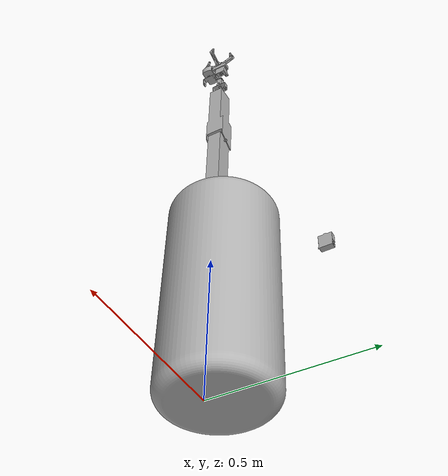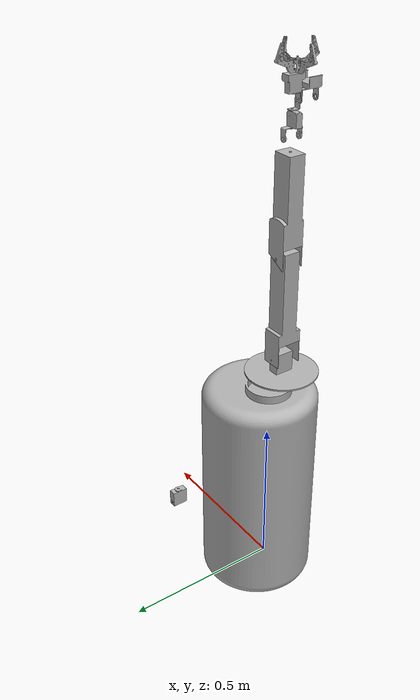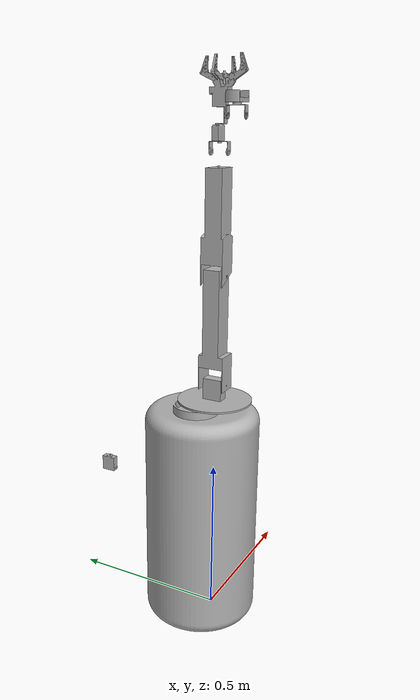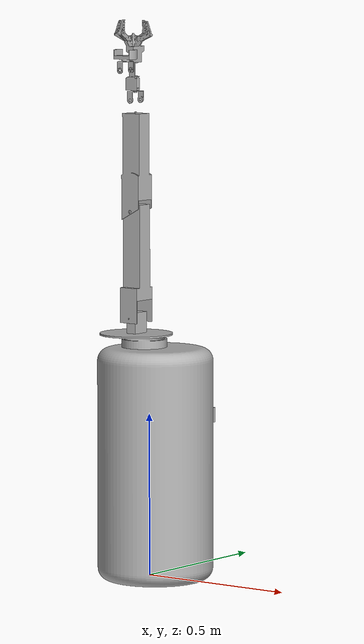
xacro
<?xml version="1.0"?>
<robot xmlns:xacro="http://www.ros.org/wiki/xacro" name="roboticarm">
    <xacro:arg name="initial_positions_file" default="initial_positions.yaml" />

    <!-- Import roboticarm urdf file -->
    <xacro:include filename="$(find roboticarm_description)/urdf/roboticarm.xacro" />

    <!-- Import control_xacro -->
    <xacro:include filename="roboticarm.ros2_control.xacro" />

    <xacro:roboticarm_ros2_control name="FakeSystem" initial_positions_file="$(arg initial_positions_file)"/>

</robot>

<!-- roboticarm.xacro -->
<robot name="roboticarm" xmlns:xacro="http://www.ros.org/wiki/xacro">

<xacro:include filename="$(find roboticarm_description)/urdf/materials.xacro" />
<xacro:include filename="$(find roboticarm_description)/urdf/roboticarm.trans" />
<xacro:include filename="$(find roboticarm_description)/urdf/roboticarm.gazebo" />

<link name="base_link">
  <inertial>
    <origin xyz="-0.007118748865126541 0.03854857506884498 0.3409955293067082" rpy="0 0 0"/>
    <mass value="555.7346839951744"/>
    <inertia ixx="27.91875" iyy="27.919694" izz="8.711451" ixy="-0.0" iyz="0.0" ixz="0.008321"/>
  </inertial>
  <visual>
    <origin xyz="0 0 0" rpy="0 0 0"/>
    <geometry>
      <mesh filename="file://$(find roboticarm_description)/meshes/base_link.stl" scale="0.001 0.001 0.001"/>
    </geometry>
    <material name="silver"/>
  </visual>
  <collision>
    <origin xyz="0 0 0" rpy="0 0 0"/>
    <geometry>
      <mesh filename="file://$(find roboticarm_description)/meshes/base_link.stl" scale="0.001 0.001 0.001"/>
    </geometry>
  </collision>
</link>

<link name="waist_1">
  <inertial>
    <origin xyz="0.0009107621972253219 -4.249311544579637e-07 0.015904214280618723" rpy="0 0 0"/>
    <mass value="2.53765521355259"/>
    <inertia ixx="0.006015" iyy="0.006217" izz="0.010077" ixy="-0.0" iyz="-0.0" ixz="-5e-05"/>
  </inertial>
  <visual>
    <origin xyz="0.049279 -0.038549 -0.72545" rpy="0 0 0"/>
    <geometry>
      <mesh filename="file://$(find roboticarm_description)/meshes/waist_1.stl" scale="0.001 0.001 0.001"/>
    </geometry>
    <material name="silver"/>
  </visual>
  <collision>
    <origin xyz="0.049279 -0.038549 -0.72545" rpy="0 0 0"/>
    <geometry>
      <mesh filename="file://$(find roboticarm_description)/meshes/waist_1.stl" scale="0.001 0.001 0.001"/>
    </geometry>
  </collision>
</link>

<link name="shoulder_1">
  <inertial>
    <origin xyz="0.0382973877790897 0.19064302764500768 -3.051579688939654e-08" rpy="0 0 0"/>
    <mass value="8.062761032384056"/>
    <inertia ixx="0.067471" iyy="0.005059" izz="0.067114" ixy="-0.0003" iyz="0.0" ixz="0.0"/>
  </inertial>
  <visual>
    <origin xyz="0.085169 -0.038549 -0.777368" rpy="0 0 0"/>
    <geometry>
      <mesh filename="file://$(find roboticarm_description)/meshes/shoulder_1.stl" scale="0.001 0.001 0.001"/>
    </geometry>
    <material name="silver"/>
  </visual>
  <collision>
    <origin xyz="0.085169 -0.038549 -0.777368" rpy="0 0 0"/>
    <geometry>
      <mesh filename="file://$(find roboticarm_description)/meshes/shoulder_1.stl" scale="0.001 0.001 0.001"/>
    </geometry>
  </collision>
</link>

<link name="elbow_1">
  <inertial>
    <origin xyz="0.02920247067105579 -7.21401386509779e-05 -0.15559823879592616" rpy="0 0 0"/>
    <mass value="7.521482396242957"/>
    <inertia ixx="0.04967" iyy="0.04938" izz="0.004753" ixy="1e-06" iyz="8.9e-05" ixz="-0.000784"/>
  </inertial>
  <visual>
    <origin xyz="0.074501 -0.365675 -0.777368" rpy="0 0 0"/>
    <geometry>
      <mesh filename="file://$(find roboticarm_description)/meshes/elbow_1.stl" scale="0.001 0.001 0.001"/>
    </geometry>
    <material name="silver"/>
  </visual>
  <collision>
    <origin xyz="0.074501 -0.365675 -0.777368" rpy="0 0 0"/>
    <geometry>
      <mesh filename="file://$(find roboticarm_description)/meshes/elbow_1.stl" scale="0.001 0.001 0.001"/>
    </geometry>
  </collision>
</link>

<link name="w_a_1">
  <inertial>
    <origin xyz="1.1946506871252094e-07 -0.00013443433148491168 -0.023017854619370004" rpy="0 0 0"/>
    <mass value="0.3295527892858855"/>
    <inertia ixx="0.000115" iyy="7.4e-05" izz="6.3e-05" ixy="-0.0" iyz="-1e-06" ixz="0.0"/>
  </inertial>
  <visual>
    <origin xyz="0.046561 -0.365167 -0.474473" rpy="0 0 0"/>
    <geometry>
      <mesh filename="file://$(find roboticarm_description)/meshes/w_a_1.stl" scale="0.001 0.001 0.001"/>
    </geometry>
    <material name="silver"/>
  </visual>
  <collision>
    <origin xyz="0.046561 -0.365167 -0.474473" rpy="0 0 0"/>
    <geometry>
      <mesh filename="file://$(find roboticarm_description)/meshes/w_a_1.stl" scale="0.001 0.001 0.001"/>
    </geometry>
  </collision>
</link>

<link name="w_b_1">
  <inertial>
    <origin xyz="-0.01133550447434497 -0.023736124931154012 1.6948420966667044e-07" rpy="0 0 0"/>
    <mass value="0.034118286687107154"/>
    <inertia ixx="2e-05" iyy="6e-06" izz="2.4e-05" ixy="-0.0" iyz="0.0" ixz="0.0"/>
  </inertial>
  <visual>
    <origin xyz="0.046561 -0.387773 -0.437465" rpy="0 0 0"/>
    <geometry>
      <mesh filename="file://$(find roboticarm_description)/meshes/w_b_1.stl" scale="0.001 0.001 0.001"/>
    </geometry>
    <material name="silver"/>
  </visual>
  <collision>
    <origin xyz="0.046561 -0.387773 -0.437465" rpy="0 0 0"/>
    <geometry>
      <mesh filename="file://$(find roboticarm_description)/meshes/w_b_1.stl" scale="0.001 0.001 0.001"/>
    </geometry>
  </collision>
</link>

<link name="w_c_1">
  <inertial>
    <origin xyz="-0.06782464300296058 0.026772593483093132 0.004049226350809176" rpy="0 0 0"/>
    <mass value="0.6066238105736357"/>
    <inertia ixx="0.000591" iyy="0.001147" izz="0.001565" ixy="0.000578" iyz="6.6e-05" ixz="-0.000114"/>
  </inertial>
  <visual>
    <origin xyz="0.073561 -0.364037 -0.437465" rpy="0 0 0"/>
    <geometry>
      <mesh filename="file://$(find roboticarm_description)/meshes/w_c_1.stl" scale="0.001 0.001 0.001"/>
    </geometry>
    <material name="silver"/>
  </visual>
  <collision>
    <origin xyz="0.073561 -0.364037 -0.437465" rpy="0 0 0"/>
    <geometry>
      <mesh filename="file://$(find roboticarm_description)/meshes/w_c_1.stl" scale="0.001 0.001 0.001"/>
    </geometry>
  </collision>
</link>

<link name="gripper_1">
  <inertial>
    <origin xyz="-0.05082579945466881 -1.12675168623122e-06 -0.005624385895113826" rpy="0 0 0"/>
    <mass value="0.7035467048550951"/>
    <inertia ixx="0.000642" iyy="0.000989" izz="0.000923" ixy="0.0" iyz="0.0" ixz="9.8e-05"/>
  </inertial>
  <visual>
    <origin xyz="-0.160761 -0.364037 0.437465" rpy="0 3.14159265 0"/>
    <geometry>
      <mesh filename="file://$(find roboticarm_description)/meshes/gripper_1.stl" scale="0.001 0.001 0.001"/>
    </geometry>
    <material name="silver"/>
  </visual>
  <collision>
    <origin xyz="-0.160761 -0.364037 0.437465" rpy="0 3.14159265 0"/>
    <geometry>
      <mesh filename="file://$(find roboticarm_description)/meshes/gripper_1.stl" scale="0.001 0.001 0.001"/>
    </geometry>
  </collision>
</link>

<link name="camera_1">
  <inertial>
    <origin xyz="0.160761 -0.364037 -0.487465" rpy="0 0 0"/>
    <mass value="0.13093799591739613"/>
    <inertia ixx="3.5e-05" iyy="3.6e-05" izz="9e-06" ixy="0.0" iyz="-0.0" ixz="0.0"/>
  </inertial>
  <visual>
    <!-- xyz: rotated offset so mesh stays at correct world position after rpy rotation -->
    <!-- rpy: +90deg around Y counter-rotates STL to face +X (toward gripper), matching joint Rigid50 -90deg -->
    <origin xyz="0.160761 -0.364037 -0.437465" rpy="0 1.5708 0"/>
    <geometry>
      <mesh filename="file://$(find roboticarm_description)/meshes/camera_1.stl" scale="0.00001 0.00001 0.00001"/>
    </geometry>
    <material name="silver"/>
  </visual>
  <collision>
    <!-- Matches visual origin so physics hull aligns with visible mesh -->
    <origin xyz="0.160761 -0.364037 -0.437465" rpy="0 1.5708 0"/>
    <geometry>
      <mesh filename="file://$(find roboticarm_description)/meshes/camera_1.stl" scale="0.00001 0.00001 0.00001"/>
    </geometry>
  </collision>
</link>

<joint name="Revolute 43" type="continuous">
  <origin xyz="-0.049279 0.038549 0.72545" rpy="0 0 0"/>
  <parent link="base_link"/>
  <child link="waist_1"/>
  <axis xyz="-0.0 -0.0 -1.0"/>
</joint>

<joint name="Revolute 44" type="continuous">
  <origin xyz="-0.03589 0.0 0.051918" rpy="0 0 0"/>
  <parent link="waist_1"/>
  <child link="shoulder_1"/>
  <axis xyz="-1.0 -0.0 0.0"/>
</joint>

<joint name="Revolute 45" type="continuous">
  <origin xyz="0.010668 0.327126 0.0" rpy="0 0 0"/>
  <parent link="shoulder_1"/>
  <child link="elbow_1"/>
  <axis xyz="-1.0 -0.0 0.0"/>
</joint>

<joint name="Revolute 46" type="continuous">
  <origin xyz="0.02794 -0.000508 -0.302895" rpy="0 0 0"/>
  <parent link="elbow_1"/>
  <child link="w_a_1"/>
  <axis xyz="-0.0 0.0 -1.0"/>
</joint>

<joint name="Revolute 47" type="continuous">
  <origin xyz="0.0 0.022606 -0.037008" rpy="0 0 0"/>
  <parent link="w_a_1"/>
  <child link="w_b_1"/>
  <axis xyz="-0.0 1.0 0.0"/>
</joint>

<joint name="Revolute 48" type="continuous">
  <origin xyz="-0.027 -0.023736 0.0" rpy="0 0 0"/>
  <parent link="w_b_1"/>
  <child link="w_c_1"/>
  <axis xyz="1.0 0.0 -0.0"/>
</joint>

<joint name="Rigid 49" type="fixed">
  <origin xyz="-0.0872 0.0 0.0" rpy="0 3.14159265 0"/>
  <parent link="w_c_1"/>
  <child link="gripper_1"/>
</joint>

<joint name="Rigid 50" type="fixed">
  <!-- rpy: -90deg around Y → camera optical axis (Z) points toward gripper (+X of w_c_1) -->
  <!-- xyz tweak: if camera clips inside body, nudge Y up e.g. 0.03939 → 0.055 -->
  <origin xyz="-0.1191 0.03939 -0.031767" rpy="0 -1.5708 0"/>
  <parent link="w_c_1"/>
  <child link="camera_1"/>
</joint>

</robot>

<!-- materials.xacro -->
<robot name="roboticarm" xmlns:xacro="http://www.ros.org/wiki/xacro" >

<material name="silver">
  <color rgba="0.700 0.700 0.700 1.000"/>
</material>

</robot>

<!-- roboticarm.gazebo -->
<robot name="roboticarm" xmlns:xacro="http://www.ros.org/wiki/xacro" >

<xacro:property name="body_color" value="Gazebo/Silver" />

<gazebo>
  <plugin name="control" filename="libgazebo_ros_control.so"/>
</gazebo>
<gazebo reference="base_link">
  <material>${body_color}</material>
  <mu1>0.2</mu1>
  <mu2>0.2</mu2>
  <self_collide>true</self_collide>
  <gravity>true</gravity>
</gazebo>

<gazebo reference="waist_1">
  <material>${body_color}</material>
  <mu1>0.2</mu1>
  <mu2>0.2</mu2>
  <self_collide>true</self_collide>
</gazebo>

<gazebo reference="shoulder_1">
  <material>${body_color}</material>
  <mu1>0.2</mu1>
  <mu2>0.2</mu2>
  <self_collide>true</self_collide>
</gazebo>

<gazebo reference="elbow_1">
  <material>${body_color}</material>
  <mu1>0.2</mu1>
  <mu2>0.2</mu2>
  <self_collide>true</self_collide>
</gazebo>

<gazebo reference="w_a_1">
  <material>${body_color}</material>
  <mu1>0.2</mu1>
  <mu2>0.2</mu2>
  <self_collide>true</self_collide>
</gazebo>

<gazebo reference="w_b_1">
  <material>${body_color}</material>
  <mu1>0.2</mu1>
  <mu2>0.2</mu2>
  <self_collide>true</self_collide>
</gazebo>

<gazebo reference="w_c_1">
  <material>${body_color}</material>
  <mu1>0.2</mu1>
  <mu2>0.2</mu2>
  <self_collide>true</self_collide>
</gazebo>

<gazebo reference="gripper_1">
  <material>${body_color}</material>
  <mu1>0.2</mu1>
  <mu2>0.2</mu2>
  <self_collide>true</self_collide>
</gazebo>

</robot>
